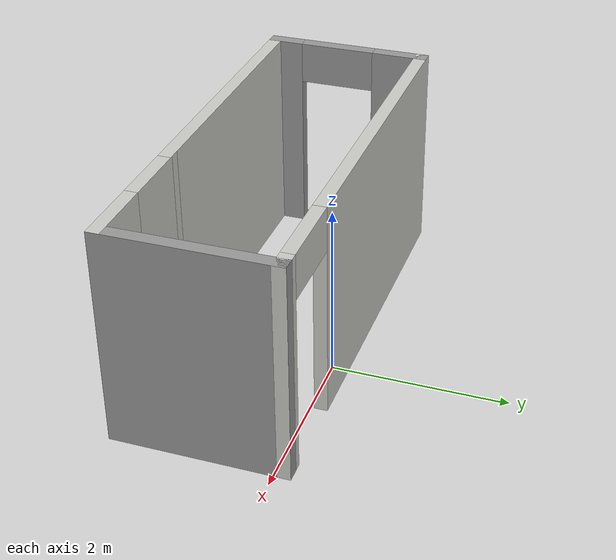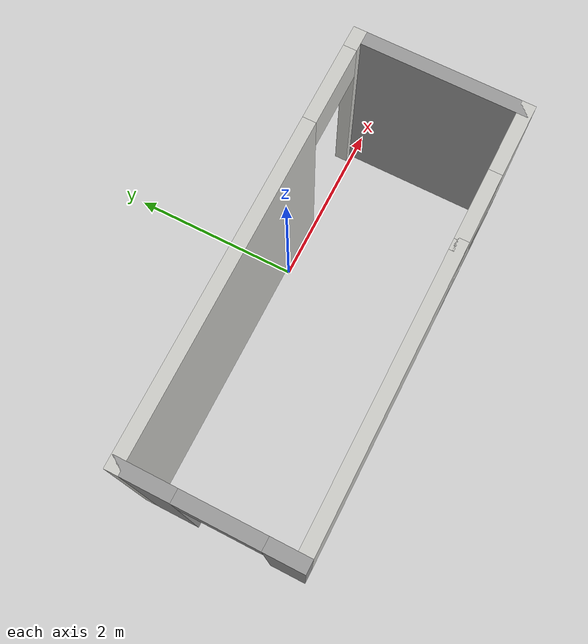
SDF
<?xml version='1.0'?>
<sdf version='1.7'>
  <model name='My_world'>
    <pose>-0.627949 -0.811597 0 0 -0 0</pose>
    <link name='Wall_1'>
      <collision name='Wall_1_Collision'>
        <geometry>
          <box>
            <size>3.25 0.15 2.5</size>
          </box>
        </geometry>
        <pose>0 0 1.25 0 -0 0</pose>
      </collision>
      <visual name='Wall_1_Visual'>
        <pose>0 0 1.25 0 -0 0</pose>
        <geometry>
          <box>
            <size>3.25 0.15 2.5</size>
          </box>
        </geometry>
        <material>
          <script>
            <uri>file://media/materials/scripts/gazebo.material</uri>
            <name>Gazebo/CeilingTiled</name>
          </script>
          <ambient>1 1 1 1</ambient>
        </material>
        <meta>
          <layer>0</layer>
        </meta>
      </visual>
      <pose>-0.725 -0.925 0 0 -0 3.14159</pose>
    </link>
    <link name='Wall_4'>
      <pose>1.625 -0.925 0 0 -0 0</pose>
      <visual name='Wall_4_Visual_0'>
        <pose>-0.813303 0 1.25 0 -0 0</pose>
        <geometry>
          <box>
            <size>0.123394 0.15 2.5</size>
          </box>
        </geometry>
        <material>
          <script>
            <uri>file://media/materials/scripts/gazebo.material</uri>
            <name>Gazebo/CeilingTiled</name>
          </script>
          <ambient>1 1 1 1</ambient>
        </material>
        <meta>
          <layer>0</layer>
        </meta>
      </visual>
      <collision name='Wall_4_Collision_0'>
        <geometry>
          <box>
            <size>0.123394 0.15 2.5</size>
          </box>
        </geometry>
        <pose>-0.813303 0 1.25 0 -0 0</pose>
      </collision>
      <visual name='Wall_4_Visual_1'>
        <pose>0.061697 0 0.25 0 -0 0</pose>
        <geometry>
          <box>
            <size>1.62661 0.15 0.5</size>
          </box>
        </geometry>
        <material>
          <script>
            <uri>file://media/materials/scripts/gazebo.material</uri>
            <name>Gazebo/CeilingTiled</name>
          </script>
          <ambient>1 1 1 1</ambient>
        </material>
        <meta>
          <layer>0</layer>
        </meta>
      </visual>
      <collision name='Wall_4_Collision_1'>
        <geometry>
          <box>
            <size>1.62661 0.15 0.5</size>
          </box>
        </geometry>
        <pose>0.061697 0 0.25 0 -0 0</pose>
      </collision>
      <visual name='Wall_4_Visual_2'>
        <pose>0.461697 0 1.5 0 -0 0</pose>
        <geometry>
          <box>
            <size>0.826606 0.15 2</size>
          </box>
        </geometry>
        <material>
          <script>
            <uri>file://media/materials/scripts/gazebo.material</uri>
            <name>Gazebo/CeilingTiled</name>
          </script>
          <ambient>1 1 1 1</ambient>
        </material>
        <meta>
          <layer>0</layer>
        </meta>
      </visual>
      <collision name='Wall_4_Collision_2'>
        <geometry>
          <box>
            <size>0.826606 0.15 2</size>
          </box>
        </geometry>
        <pose>0.461697 0 1.5 0 -0 0</pose>
      </collision>
      <visual name='Wall_4_Visual_3'>
        <pose>-0.351606 0 1.9 0 -0 0</pose>
        <geometry>
          <box>
            <size>0.8 0.15 1.2</size>
          </box>
        </geometry>
        <material>
          <script>
            <uri>file://media/materials/scripts/gazebo.material</uri>
            <name>Gazebo/CeilingTiled</name>
          </script>
          <ambient>1 1 1 1</ambient>
        </material>
        <meta>
          <layer>0</layer>
        </meta>
      </visual>
      <collision name='Wall_4_Collision_3'>
        <geometry>
          <box>
            <size>0.8 0.15 1.2</size>
          </box>
        </geometry>
        <pose>-0.351606 0 1.9 0 -0 0</pose>
      </collision>
    </link>
    <link name='Wall_5'>
      <collision name='Wall_5_Collision'>
        <geometry>
          <box>
            <size>2 0.15 2.5</size>
          </box>
        </geometry>
        <pose>0 0 1.25 0 -0 0</pose>
      </collision>
      <visual name='Wall_5_Visual'>
        <pose>0 0 1.25 0 -0 0</pose>
        <geometry>
          <box>
            <size>2 0.15 2.5</size>
          </box>
        </geometry>
        <material>
          <script>
            <uri>file://media/materials/scripts/gazebo.material</uri>
            <name>Gazebo/Grey</name>
          </script>
          <ambient>1 1 1 1</ambient>
        </material>
        <meta>
          <layer>0</layer>
        </meta>
      </visual>
      <pose>2.425 0 0 0 -0 1.5708</pose>
    </link>
    <link name='Wall_6'>
      <pose>-0 0.925 0 0 -0 3.14159</pose>
      <visual name='Wall_6_Visual_0'>
        <pose>-2.38013 0 1.25 0 -0 0</pose>
        <geometry>
          <box>
            <size>0.239744 0.15 2.5</size>
          </box>
        </geometry>
        <material>
          <script>
            <uri>file://media/materials/scripts/gazebo.material</uri>
            <name>Gazebo/CeilingTiled</name>
          </script>
          <ambient>1 1 1 1</ambient>
        </material>
        <meta>
          <layer>0</layer>
        </meta>
      </visual>
      <collision name='Wall_6_Collision_0'>
        <geometry>
          <box>
            <size>0.239744 0.15 2.5</size>
          </box>
        </geometry>
        <pose>-2.38013 0 1.25 0 -0 0</pose>
      </collision>
      <visual name='Wall_6_Visual_1'>
        <pose>0.569872 0 1.25 0 -0 0</pose>
        <geometry>
          <box>
            <size>3.86026 0.15 2.5</size>
          </box>
        </geometry>
        <material>
          <script>
            <uri>file://media/materials/scripts/gazebo.material</uri>
            <name>Gazebo/CeilingTiled</name>
          </script>
          <ambient>1 1 1 1</ambient>
        </material>
        <meta>
          <layer>0</layer>
        </meta>
      </visual>
      <collision name='Wall_6_Collision_1'>
        <geometry>
          <box>
            <size>3.86026 0.15 2.5</size>
          </box>
        </geometry>
        <pose>0.569872 0 1.25 0 -0 0</pose>
      </collision>
      <visual name='Wall_6_Visual_2'>
        <pose>-1.81026 0 2.25 0 -0 0</pose>
        <geometry>
          <box>
            <size>0.9 0.15 0.5</size>
          </box>
        </geometry>
        <material>
          <script>
            <uri>file://media/materials/scripts/gazebo.material</uri>
            <name>Gazebo/CeilingTiled</name>
          </script>
          <ambient>1 1 1 1</ambient>
        </material>
        <meta>
          <layer>0</layer>
        </meta>
      </visual>
      <collision name='Wall_6_Collision_2'>
        <geometry>
          <box>
            <size>0.9 0.15 0.5</size>
          </box>
        </geometry>
        <pose>-1.81026 0 2.25 0 -0 0</pose>
      </collision>
    </link>
    <link name='Wall_7'>
      <pose>-2.425 0 0 0 -0 -1.5708</pose>
      <visual name='Wall_7_Visual_0'>
        <pose>-0.664855 0 1.25 0 -0 0</pose>
        <geometry>
          <box>
            <size>0.670291 0.15 2.5</size>
          </box>
        </geometry>
        <material>
          <script>
            <uri>file://media/materials/scripts/gazebo.material</uri>
            <name>Gazebo/Grey</name>
          </script>
          <ambient>1 1 1 1</ambient>
        </material>
        <meta>
          <layer>0</layer>
        </meta>
      </visual>
      <collision name='Wall_7_Collision_0'>
        <geometry>
          <box>
            <size>0.670291 0.15 2.5</size>
          </box>
        </geometry>
        <pose>-0.664855 0 1.25 0 -0 0</pose>
      </collision>
      <visual name='Wall_7_Visual_1'>
        <pose>0.785145 0 1.25 0 -0 0</pose>
        <geometry>
          <box>
            <size>0.429709 0.15 2.5</size>
          </box>
        </geometry>
        <material>
          <script>
            <uri>file://media/materials/scripts/gazebo.material</uri>
            <name>Gazebo/Grey</name>
          </script>
          <ambient>1 1 1 1</ambient>
        </material>
        <meta>
          <layer>0</layer>
        </meta>
      </visual>
      <collision name='Wall_7_Collision_1'>
        <geometry>
          <box>
            <size>0.429709 0.15 2.5</size>
          </box>
        </geometry>
        <pose>0.785145 0 1.25 0 -0 0</pose>
      </collision>
      <visual name='Wall_7_Visual_2'>
        <pose>0.120291 0 2.25 0 -0 0</pose>
        <geometry>
          <box>
            <size>0.9 0.15 0.5</size>
          </box>
        </geometry>
        <material>
          <script>
            <uri>file://media/materials/scripts/gazebo.material</uri>
            <name>Gazebo/Grey</name>
          </script>
          <ambient>1 1 1 1</ambient>
        </material>
        <meta>
          <layer>0</layer>
        </meta>
      </visual>
      <collision name='Wall_7_Collision_2'>
        <geometry>
          <box>
            <size>0.9 0.15 0.5</size>
          </box>
        </geometry>
        <pose>0.120291 0 2.25 0 -0 0</pose>
      </collision>
    </link>
    <static>1</static>
  </model>
</sdf>
